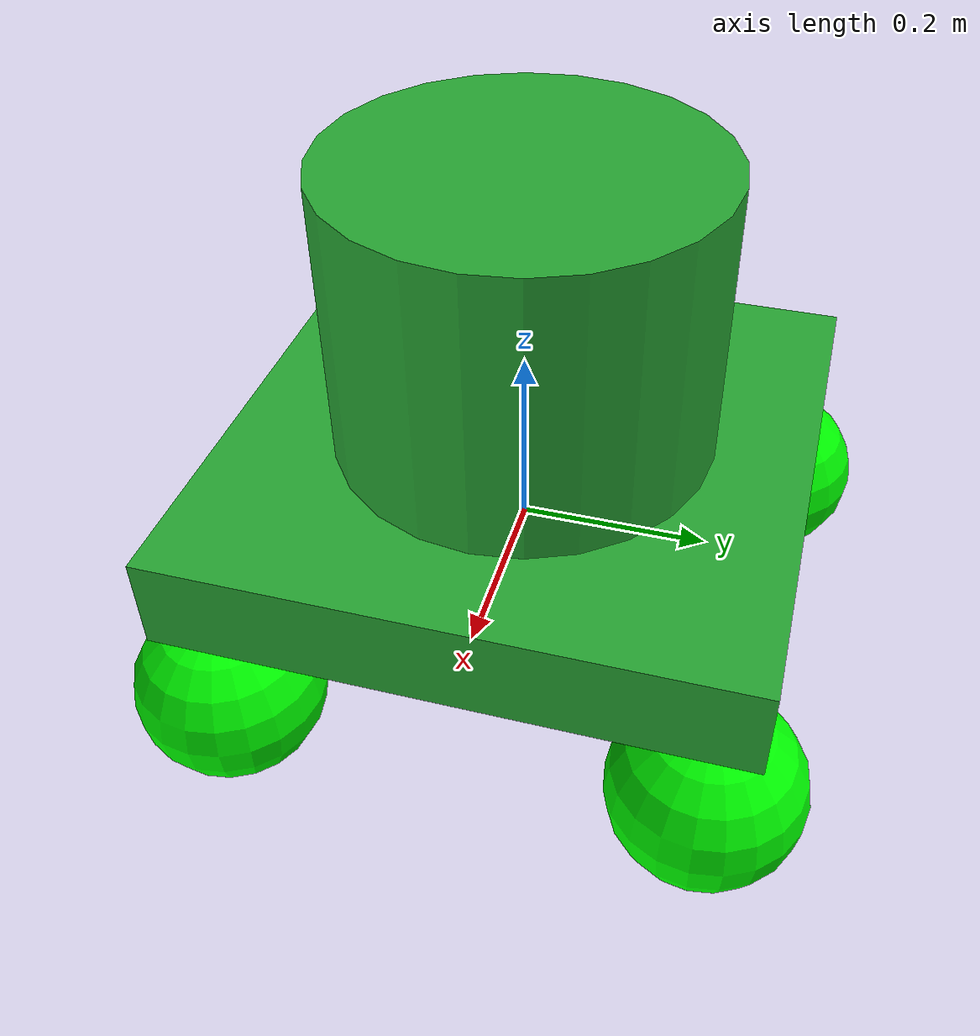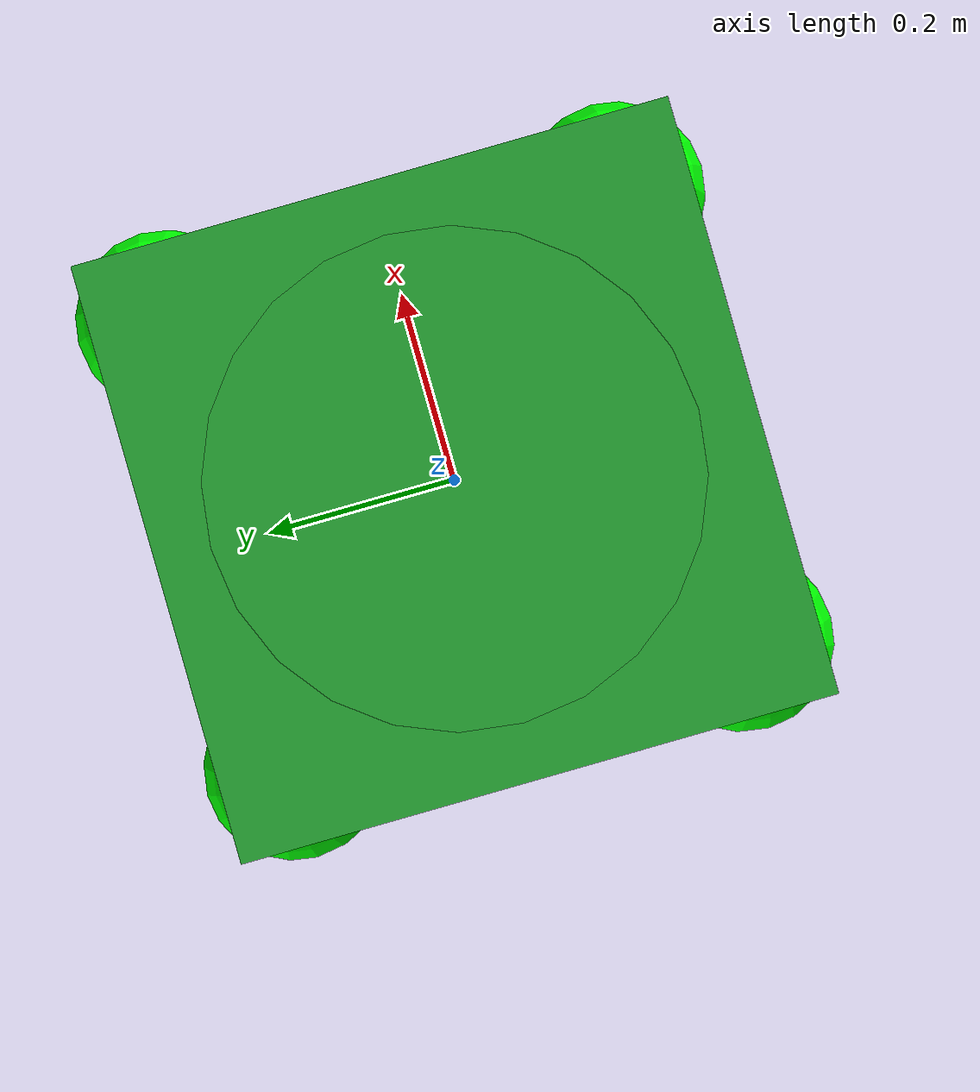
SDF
<?xml version='1.0'?>
<sdf version='1.7'>
  <model name='HumanoidRobot'>
    <link name='link_0'>
      <inertial>
        <mass>1</mass>
        <inertia>
          <ixx>0.166667</ixx>
          <ixy>0</ixy>
          <ixz>0</ixz>
          <iyy>0.166667</iyy>
          <iyz>0</iyz>
          <izz>0.166667</izz>
        </inertia>
        <pose>0 0 0 0 -0 0</pose>
      </inertial>
      <pose>0 0 0.066667 0 -0 0</pose>
      <gravity>1</gravity>
      <self_collide>0</self_collide>
      <kinematic>0</kinematic>
      <enable_wind>0</enable_wind>
      <visual name='visual'>
        <pose>0 0 0 0 -0 0</pose>
        <geometry>
          <box>
            <size>0.6 0.6 0.1</size>
          </box>
        </geometry>
        <material>
          <lighting>1</lighting>
          <script>
            <uri>file://media/materials/scripts/gazebo.material</uri>
            <name>Gazebo/Green</name>
          </script>
          <shader type='pixel'>
            <normal_map>__default__</normal_map>
          </shader>
          <ambient>0 1 0 1</ambient>
          <diffuse>0.7 0.7 0.7 1</diffuse>
          <specular>0.01 0.01 0.01 1</specular>
          <emissive>0 0 0 1</emissive>
        </material>
        <transparency>0</transparency>
        <cast_shadows>1</cast_shadows>
      </visual>
      <collision name='collision'>
        <laser_retro>0</laser_retro>
        <max_contacts>10</max_contacts>
        <pose>0 0 0 0 -0 0</pose>
        <geometry>
          <box>
            <size>0.6 0.6 0.1</size>
          </box>
        </geometry>
        <surface>
          <friction>
            <ode>
              <mu>1</mu>
              <mu2>1</mu2>
              <fdir1>0 0 0</fdir1>
              <slip1>0</slip1>
              <slip2>0</slip2>
            </ode>
            <torsional>
              <coefficient>1</coefficient>
              <patch_radius>0</patch_radius>
              <surface_radius>0</surface_radius>
              <use_patch_radius>1</use_patch_radius>
              <ode>
                <slip>0</slip>
              </ode>
            </torsional>
          </friction>
          <bounce>
            <restitution_coefficient>0</restitution_coefficient>
            <threshold>1e+06</threshold>
          </bounce>
          <contact>
            <collide_without_contact>0</collide_without_contact>
            <collide_without_contact_bitmask>1</collide_without_contact_bitmask>
            <collide_bitmask>1</collide_bitmask>
            <ode>
              <soft_cfm>0</soft_cfm>
              <soft_erp>0.2</soft_erp>
              <kp>1e+13</kp>
              <kd>1</kd>
              <max_vel>0.01</max_vel>
              <min_depth>0</min_depth>
            </ode>
            <bullet>
              <split_impulse>1</split_impulse>
              <split_impulse_penetration_threshold>-0.01</split_impulse_penetration_threshold>
              <soft_cfm>0</soft_cfm>
              <soft_erp>0.2</soft_erp>
              <kp>1e+13</kp>
              <kd>1</kd>
            </bullet>
          </contact>
        </surface>
      </collision>
    </link>
    <link name='link_1'>
      <inertial>
        <mass>1</mass>
        <inertia>
          <ixx>0.1</ixx>
          <ixy>0</ixy>
          <ixz>0</ixz>
          <iyy>0.1</iyy>
          <iyz>0</iyz>
          <izz>0.1</izz>
        </inertia>
        <pose>0 0 0 0 -0 0</pose>
      </inertial>
      <pose>0.25 0.25 -0.083333 0 -0 0</pose>
      <gravity>1</gravity>
      <self_collide>0</self_collide>
      <kinematic>0</kinematic>
      <enable_wind>0</enable_wind>
      <visual name='visual'>
        <pose>0 0 0 0 -0 0</pose>
        <geometry>
          <sphere>
            <radius>0.1</radius>
          </sphere>
        </geometry>
        <material>
          <lighting>1</lighting>
          <script>
            <uri>file://media/materials/scripts/gazebo.material</uri>
            <name>Gazebo/Grey</name>
          </script>
          <shader type='pixel'>
            <normal_map>__default__</normal_map>
          </shader>
          <ambient>0 1 0 1</ambient>
          <diffuse>0.7 0.7 0.7 1</diffuse>
          <specular>0.01 0.01 0.01 1</specular>
          <emissive>0 0 0 1</emissive>
        </material>
        <transparency>0</transparency>
        <cast_shadows>1</cast_shadows>
      </visual>
      <collision name='collision'>
        <laser_retro>0</laser_retro>
        <max_contacts>10</max_contacts>
        <pose>0 0 0 0 -0 0</pose>
        <geometry>
          <sphere>
            <radius>0.1</radius>
          </sphere>
        </geometry>
        <surface>
          <friction>
            <ode>
              <mu>1</mu>
              <mu2>1</mu2>
              <fdir1>0 0 0</fdir1>
              <slip1>0</slip1>
              <slip2>0</slip2>
            </ode>
            <torsional>
              <coefficient>1</coefficient>
              <patch_radius>0</patch_radius>
              <surface_radius>0</surface_radius>
              <use_patch_radius>1</use_patch_radius>
              <ode>
                <slip>0</slip>
              </ode>
            </torsional>
          </friction>
          <bounce>
            <restitution_coefficient>0</restitution_coefficient>
            <threshold>1e+06</threshold>
          </bounce>
          <contact>
            <collide_without_contact>0</collide_without_contact>
            <collide_without_contact_bitmask>1</collide_without_contact_bitmask>
            <collide_bitmask>1</collide_bitmask>
            <ode>
              <soft_cfm>0</soft_cfm>
              <soft_erp>0.2</soft_erp>
              <kp>1e+13</kp>
              <kd>1</kd>
              <max_vel>0.01</max_vel>
              <min_depth>0</min_depth>
            </ode>
            <bullet>
              <split_impulse>1</split_impulse>
              <split_impulse_penetration_threshold>-0.01</split_impulse_penetration_threshold>
              <soft_cfm>0</soft_cfm>
              <soft_erp>0.2</soft_erp>
              <kp>1e+13</kp>
              <kd>1</kd>
            </bullet>
          </contact>
        </surface>
      </collision>
    </link>
    <link name='link_1_clone'>
      <inertial>
        <mass>1</mass>
        <inertia>
          <ixx>0.1</ixx>
          <ixy>0</ixy>
          <ixz>0</ixz>
          <iyy>0.1</iyy>
          <iyz>0</iyz>
          <izz>0.1</izz>
        </inertia>
        <pose>0 0 0 0 -0 0</pose>
      </inertial>
      <pose>0.25 -0.25 -0.083333 0 -0 0</pose>
      <gravity>1</gravity>
      <self_collide>0</self_collide>
      <kinematic>0</kinematic>
      <enable_wind>0</enable_wind>
      <visual name='visual'>
        <pose>0 0 0 0 -0 0</pose>
        <geometry>
          <sphere>
            <radius>0.1</radius>
          </sphere>
        </geometry>
        <material>
          <lighting>1</lighting>
          <script>
            <uri>file://media/materials/scripts/gazebo.material</uri>
            <name>Gazebo/Grey</name>
          </script>
          <shader type='pixel'>
            <normal_map>__default__</normal_map>
          </shader>
          <ambient>0 1 0 1</ambient>
          <diffuse>0.7 0.7 0.7 1</diffuse>
          <specular>0.01 0.01 0.01 1</specular>
          <emissive>0 0 0 1</emissive>
        </material>
        <transparency>0</transparency>
        <cast_shadows>1</cast_shadows>
      </visual>
      <collision name='collision'>
        <laser_retro>0</laser_retro>
        <max_contacts>10</max_contacts>
        <pose>0 0 0 0 -0 0</pose>
        <geometry>
          <sphere>
            <radius>0.1</radius>
          </sphere>
        </geometry>
        <surface>
          <friction>
            <ode>
              <mu>1</mu>
              <mu2>1</mu2>
              <fdir1>0 0 0</fdir1>
              <slip1>0</slip1>
              <slip2>0</slip2>
            </ode>
            <torsional>
              <coefficient>1</coefficient>
              <patch_radius>0</patch_radius>
              <surface_radius>0</surface_radius>
              <use_patch_radius>1</use_patch_radius>
              <ode>
                <slip>0</slip>
              </ode>
            </torsional>
          </friction>
          <bounce>
            <restitution_coefficient>0</restitution_coefficient>
            <threshold>1e+06</threshold>
          </bounce>
          <contact>
            <collide_without_contact>0</collide_without_contact>
            <collide_without_contact_bitmask>1</collide_without_contact_bitmask>
            <collide_bitmask>1</collide_bitmask>
            <ode>
              <soft_cfm>0</soft_cfm>
              <soft_erp>0.2</soft_erp>
              <kp>1e+13</kp>
              <kd>1</kd>
              <max_vel>0.01</max_vel>
              <min_depth>0</min_depth>
            </ode>
            <bullet>
              <split_impulse>1</split_impulse>
              <split_impulse_penetration_threshold>-0.01</split_impulse_penetration_threshold>
              <soft_cfm>0</soft_cfm>
              <soft_erp>0.2</soft_erp>
              <kp>1e+13</kp>
              <kd>1</kd>
            </bullet>
          </contact>
        </surface>
      </collision>
    </link>
    <link name='link_1_clone_clone'>
      <inertial>
        <mass>1</mass>
        <inertia>
          <ixx>0.1</ixx>
          <ixy>0</ixy>
          <ixz>0</ixz>
          <iyy>0.1</iyy>
          <iyz>0</iyz>
          <izz>0.1</izz>
        </inertia>
        <pose>0 0 0 0 -0 0</pose>
      </inertial>
      <pose>-0.25 -0.25 -0.083333 0 -0 0</pose>
      <gravity>1</gravity>
      <self_collide>0</self_collide>
      <kinematic>0</kinematic>
      <enable_wind>0</enable_wind>
      <visual name='visual'>
        <pose>0 0 0 0 -0 0</pose>
        <geometry>
          <sphere>
            <radius>0.1</radius>
          </sphere>
        </geometry>
        <material>
          <lighting>1</lighting>
          <script>
            <uri>file://media/materials/scripts/gazebo.material</uri>
            <name>Gazebo/Grey</name>
          </script>
          <shader type='pixel'>
            <normal_map>__default__</normal_map>
          </shader>
          <ambient>0 1 0 1</ambient>
          <diffuse>0.7 0.7 0.7 1</diffuse>
          <specular>0.01 0.01 0.01 1</specular>
          <emissive>0 0 0 1</emissive>
        </material>
        <transparency>0</transparency>
        <cast_shadows>1</cast_shadows>
      </visual>
      <collision name='collision'>
        <laser_retro>0</laser_retro>
        <max_contacts>10</max_contacts>
        <pose>0 0 0 0 -0 0</pose>
        <geometry>
          <sphere>
            <radius>0.1</radius>
          </sphere>
        </geometry>
        <surface>
          <friction>
            <ode>
              <mu>1</mu>
              <mu2>1</mu2>
              <fdir1>0 0 0</fdir1>
              <slip1>0</slip1>
              <slip2>0</slip2>
            </ode>
            <torsional>
              <coefficient>1</coefficient>
              <patch_radius>0</patch_radius>
              <surface_radius>0</surface_radius>
              <use_patch_radius>1</use_patch_radius>
              <ode>
                <slip>0</slip>
              </ode>
            </torsional>
          </friction>
          <bounce>
            <restitution_coefficient>0</restitution_coefficient>
            <threshold>1e+06</threshold>
          </bounce>
          <contact>
            <collide_without_contact>0</collide_without_contact>
            <collide_without_contact_bitmask>1</collide_without_contact_bitmask>
            <collide_bitmask>1</collide_bitmask>
            <ode>
              <soft_cfm>0</soft_cfm>
              <soft_erp>0.2</soft_erp>
              <kp>1e+13</kp>
              <kd>1</kd>
              <max_vel>0.01</max_vel>
              <min_depth>0</min_depth>
            </ode>
            <bullet>
              <split_impulse>1</split_impulse>
              <split_impulse_penetration_threshold>-0.01</split_impulse_penetration_threshold>
              <soft_cfm>0</soft_cfm>
              <soft_erp>0.2</soft_erp>
              <kp>1e+13</kp>
              <kd>1</kd>
            </bullet>
          </contact>
        </surface>
      </collision>
    </link>
    <link name='link_1_clone_clone_clone'>
      <inertial>
        <mass>1</mass>
        <inertia>
          <ixx>0.1</ixx>
          <ixy>0</ixy>
          <ixz>0</ixz>
          <iyy>0.1</iyy>
          <iyz>0</iyz>
          <izz>0.1</izz>
        </inertia>
        <pose>0 0 0 0 -0 0</pose>
      </inertial>
      <pose>-0.25 0.25 -0.083333 0 -0 0</pose>
      <gravity>1</gravity>
      <self_collide>0</self_collide>
      <kinematic>0</kinematic>
      <enable_wind>0</enable_wind>
      <visual name='visual'>
        <pose>0 0 0 0 -0 0</pose>
        <geometry>
          <sphere>
            <radius>0.1</radius>
          </sphere>
        </geometry>
        <material>
          <lighting>1</lighting>
          <script>
            <uri>file://media/materials/scripts/gazebo.material</uri>
            <name>Gazebo/Grey</name>
          </script>
          <shader type='pixel'>
            <normal_map>__default__</normal_map>
          </shader>
          <ambient>0 1 0 1</ambient>
          <diffuse>0.7 0.7 0.7 1</diffuse>
          <specular>0.01 0.01 0.01 1</specular>
          <emissive>0 0 0 1</emissive>
        </material>
        <transparency>0</transparency>
        <cast_shadows>1</cast_shadows>
      </visual>
      <collision name='collision'>
        <laser_retro>0</laser_retro>
        <max_contacts>10</max_contacts>
        <pose>0 0 0 0 -0 0</pose>
        <geometry>
          <sphere>
            <radius>0.1</radius>
          </sphere>
        </geometry>
        <surface>
          <friction>
            <ode>
              <mu>1</mu>
              <mu2>1</mu2>
              <fdir1>0 0 0</fdir1>
              <slip1>0</slip1>
              <slip2>0</slip2>
            </ode>
            <torsional>
              <coefficient>1</coefficient>
              <patch_radius>0</patch_radius>
              <surface_radius>0</surface_radius>
              <use_patch_radius>1</use_patch_radius>
              <ode>
                <slip>0</slip>
              </ode>
            </torsional>
          </friction>
          <bounce>
            <restitution_coefficient>0</restitution_coefficient>
            <threshold>1e+06</threshold>
          </bounce>
          <contact>
            <collide_without_contact>0</collide_without_contact>
            <collide_without_contact_bitmask>1</collide_without_contact_bitmask>
            <collide_bitmask>1</collide_bitmask>
            <ode>
              <soft_cfm>0</soft_cfm>
              <soft_erp>0.2</soft_erp>
              <kp>1e+13</kp>
              <kd>1</kd>
              <max_vel>0.01</max_vel>
              <min_depth>0</min_depth>
            </ode>
            <bullet>
              <split_impulse>1</split_impulse>
              <split_impulse_penetration_threshold>-0.01</split_impulse_penetration_threshold>
              <soft_cfm>0</soft_cfm>
              <soft_erp>0.2</soft_erp>
              <kp>1e+13</kp>
              <kd>1</kd>
            </bullet>
          </contact>
        </surface>
      </collision>
    </link>
    <link name='link_2'>
      <inertial>
        <mass>1</mass>
        <inertia>
          <ixx>0.145833</ixx>
          <ixy>0</ixy>
          <ixz>0</ixz>
          <iyy>0.145833</iyy>
          <iyz>0</iyz>
          <izz>0.125</izz>
        </inertia>
        <pose>0 0 0 0 -0 0</pose>
      </inertial>
      <pose>0 0 0.266667 0 -0 0</pose>
      <gravity>1</gravity>
      <self_collide>0</self_collide>
      <kinematic>0</kinematic>
      <enable_wind>0</enable_wind>
      <visual name='visual'>
        <pose>0 0 0 0 -0 0</pose>
        <geometry>
          <cylinder>
            <radius>0.2</radius>
            <length>0.3</length>
          </cylinder>
        </geometry>
        <material>
          <lighting>1</lighting>
          <script>
            <uri>file://media/materials/scripts/gazebo.material</uri>
            <name>Gazebo/Green</name>
          </script>
          <shader type='pixel'>
            <normal_map>__default__</normal_map>
          </shader>
          <ambient>0 1 0 1</ambient>
          <diffuse>0.7 0.7 0.7 1</diffuse>
          <specular>0.01 0.01 0.01 1</specular>
          <emissive>0 0 0 1</emissive>
        </material>
        <transparency>0</transparency>
        <cast_shadows>1</cast_shadows>
      </visual>
      <collision name='collision'>
        <laser_retro>0</laser_retro>
        <max_contacts>10</max_contacts>
        <pose>0 0 0 0 -0 0</pose>
        <geometry>
          <cylinder>
            <radius>0.2</radius>
            <length>0.3</length>
          </cylinder>
        </geometry>
        <surface>
          <friction>
            <ode>
              <mu>1</mu>
              <mu2>1</mu2>
              <fdir1>0 0 0</fdir1>
              <slip1>0</slip1>
              <slip2>0</slip2>
            </ode>
            <torsional>
              <coefficient>1</coefficient>
              <patch_radius>0</patch_radius>
              <surface_radius>0</surface_radius>
              <use_patch_radius>1</use_patch_radius>
              <ode>
                <slip>0</slip>
              </ode>
            </torsional>
          </friction>
          <bounce>
            <restitution_coefficient>0</restitution_coefficient>
            <threshold>1e+06</threshold>
          </bounce>
          <contact>
            <collide_without_contact>0</collide_without_contact>
            <collide_without_contact_bitmask>1</collide_without_contact_bitmask>
            <collide_bitmask>1</collide_bitmask>
            <ode>
              <soft_cfm>0</soft_cfm>
              <soft_erp>0.2</soft_erp>
              <kp>1e+13</kp>
              <kd>1</kd>
              <max_vel>0.01</max_vel>
              <min_depth>0</min_depth>
            </ode>
            <bullet>
              <split_impulse>1</split_impulse>
              <split_impulse_penetration_threshold>-0.01</split_impulse_penetration_threshold>
              <soft_cfm>0</soft_cfm>
              <soft_erp>0.2</soft_erp>
              <kp>1e+13</kp>
              <kd>1</kd>
            </bullet>
          </contact>
        </surface>
      </collision>
    </link>
    <joint name='link_0_JOINT_0' type='ball'>
      <parent>link_0</parent>
      <child>link_1_clone_clone_clone</child>
      <pose>0 0 0 0 -0 0</pose>
      <physics>
        <ode>
          <limit>
            <cfm>0</cfm>
            <erp>0.2</erp>
          </limit>
          <suspension>
            <cfm>0</cfm>
            <erp>0.2</erp>
          </suspension>
        </ode>
      </physics>
    </joint>
    <joint name='link_0_JOINT_1' type='ball'>
      <parent>link_0</parent>
      <child>link_1_clone_clone</child>
      <pose>0 0 0 0 -0 0</pose>
      <physics>
        <ode>
          <limit>
            <cfm>0</cfm>
            <erp>0.2</erp>
          </limit>
          <suspension>
            <cfm>0</cfm>
            <erp>0.2</erp>
          </suspension>
        </ode>
      </physics>
    </joint>
    <joint name='link_0_JOINT_2' type='ball'>
      <parent>link_0</parent>
      <child>link_1_clone</child>
      <pose>0 0 0 0 -0 0</pose>
      <physics>
        <ode>
          <limit>
            <cfm>0</cfm>
            <erp>0.2</erp>
          </limit>
          <suspension>
            <cfm>0</cfm>
            <erp>0.2</erp>
          </suspension>
        </ode>
      </physics>
    </joint>
    <joint name='link_0_JOINT_3' type='ball'>
      <parent>link_0</parent>
      <child>link_1</child>
      <pose>0 0 0 0 -0 0</pose>
      <physics>
        <ode>
          <limit>
            <cfm>0</cfm>
            <erp>0.2</erp>
          </limit>
          <suspension>
            <cfm>0</cfm>
            <erp>0.2</erp>
          </suspension>
        </ode>
      </physics>
    </joint>
    <joint name='link_0_JOINT_4' type='fixed'>
      <parent>link_0</parent>
      <child>link_2</child>
      <pose>0 0 0 0 -0 0</pose>
      <physics>
        <ode>
          <limit>
            <cfm>0</cfm>
            <erp>0.2</erp>
          </limit>
          <suspension>
            <cfm>0</cfm>
            <erp>0.2</erp>
          </suspension>
        </ode>
      </physics>
    </joint>
    <static>0</static>
    <allow_auto_disable>1</allow_auto_disable>
  </model>
</sdf>
